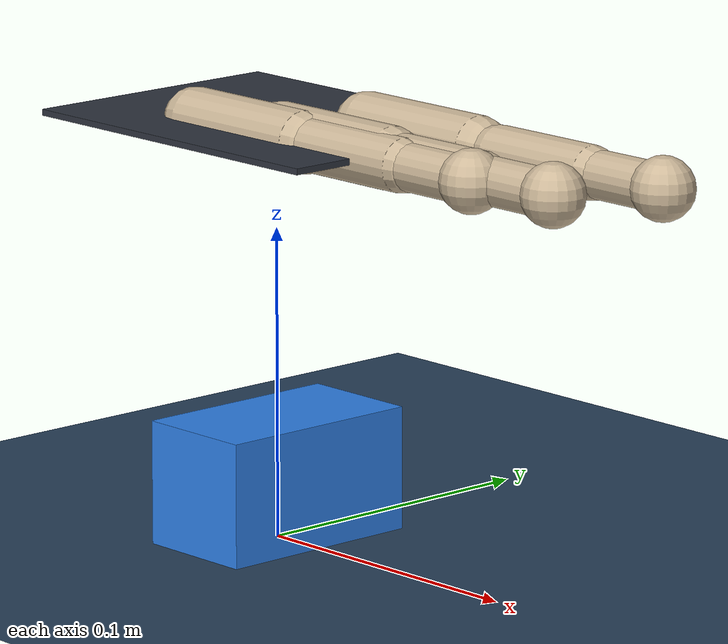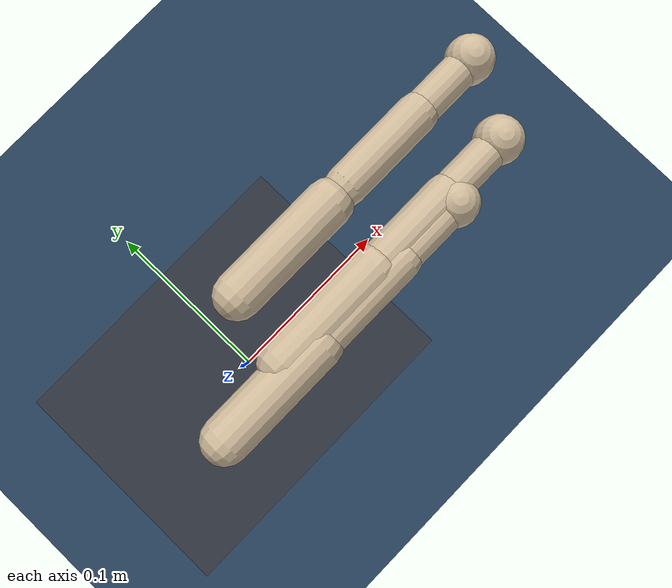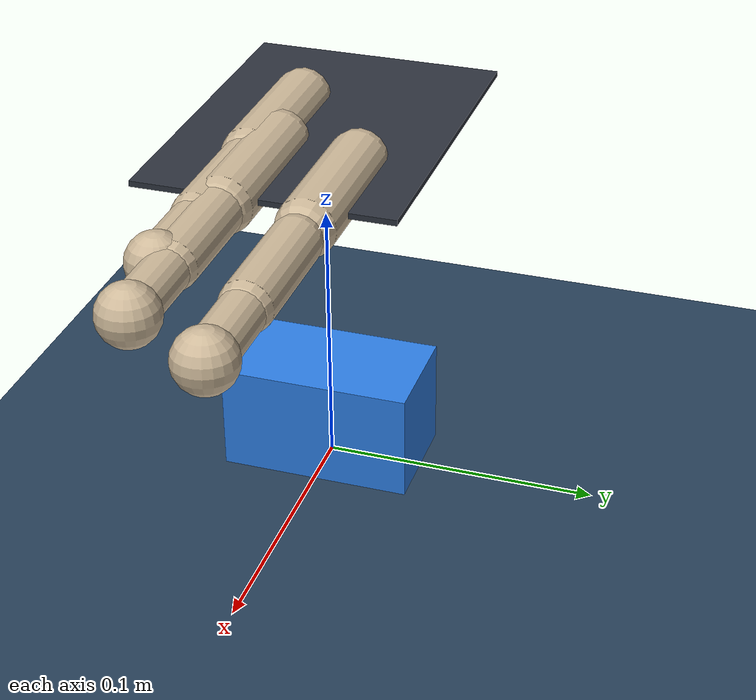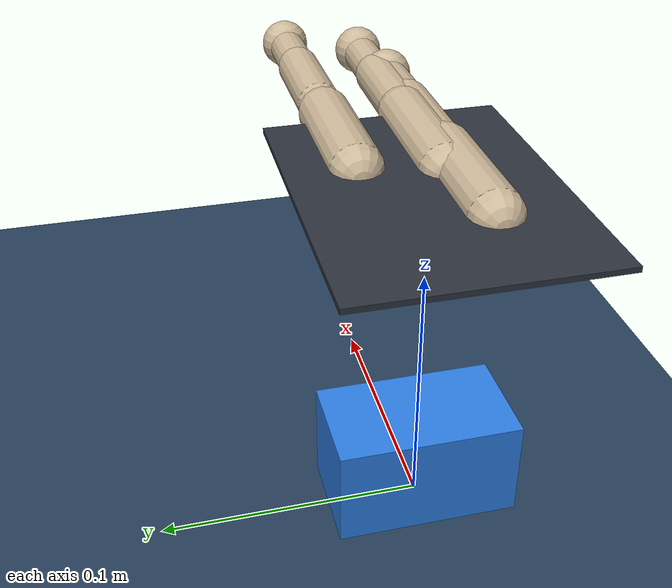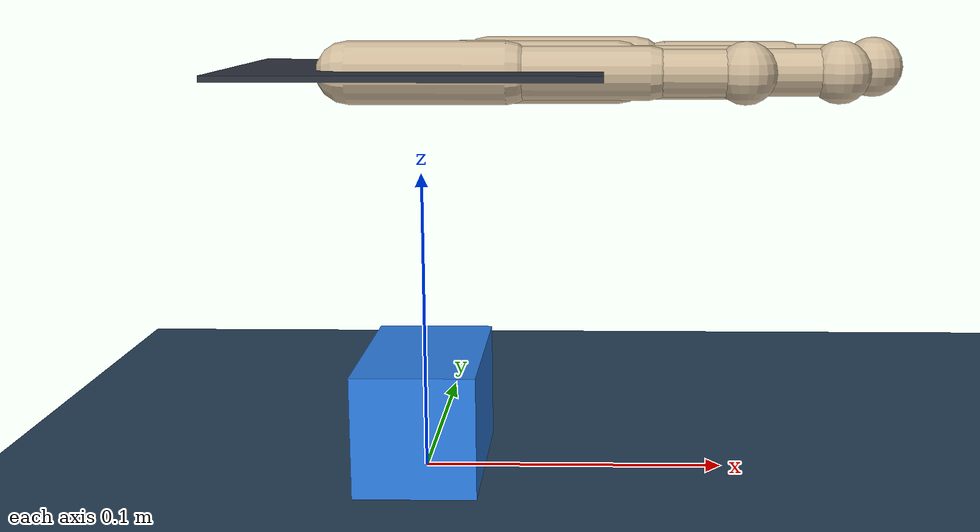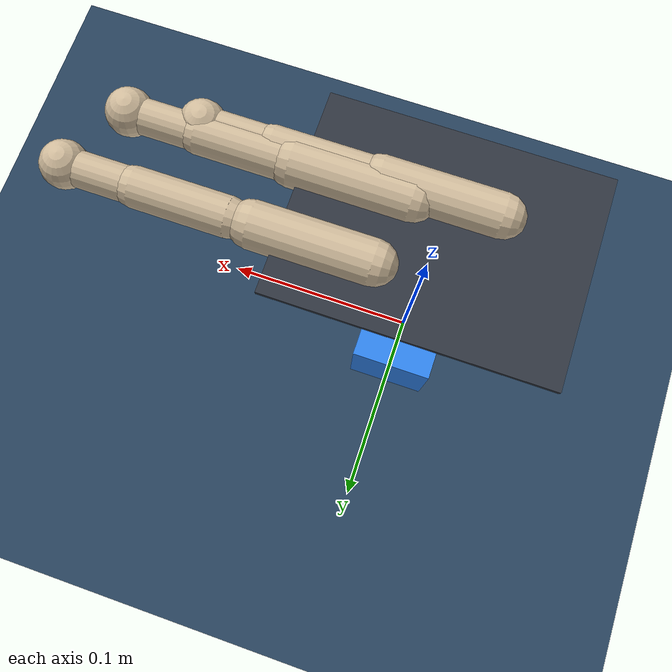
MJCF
<mujoco model="scene_prism3_tp0d0094p0d0127p0d0051_ip0d0209n0d0108p0d0092_mp0d0144p0d0193p0d0000">
  <compiler angle="radian" autolimits="true" />
  <option timestep="0.002" gravity="0 0 -9.81" integrator="implicitfast" />
  <visual>
    <headlight ambient=".4 .4 .4" diffuse=".8 .8 .8" specular="0.1 0.1 0.1" />
    <map znear=".01" />
    <quality shadowsize="2048" />
    <global elevation="-15" />
  </visual>
  <default>
    <geom friction="1.0 0.05 0.001" solref="0.01 1" solimp="0.95 0.99 0.001" />
    <motor ctrlrange="-1 1" ctrllimited="true" />
    <default class="pose">
      <joint damping="2.0" armature="0.01" />
      <position kp="4000" kv="100" forcerange="-1000 1000" />
    </default>
    <default class="ctrl">
      <joint damping="0.5" armature="0.001" />
      <position kp="30" kv="0.5" gear="1" forcerange="-10 10" ctrlrange="-1 1" />
    </default>
  </default>
  <asset>
    <texture type="skybox" builtin="gradient" rgb1="0.3 0.5 0.7" rgb2="0 0 0" width="512" height="3072" />
    <texture type="2d" name="groundplane" builtin="checker" mark="edge" rgb1="0.2 0.3 0.4" rgb2="0.1 0.2 0.3" markrgb="0.8 0.8 0.8" width="300" height="300" />
    <material name="groundplane" texture="groundplane" texuniform="true" texrepeat="5 5" reflectance="0.2" />
    <texture name="grid" type="2d" builtin="checker" rgb1="0.15 0.15 0.15" rgb2="0.25 0.25 0.25" width="256" height="256" />
    <material name="table_mat" texture="grid" texrepeat="3 3" reflectance="0.2" />
    <material name="palm_mat" rgba="0.18 0.2 0.24 1" />
    <material name="finger_mat" rgba="0.8 0.72 0.6 1" />
    <material name="object_mat" rgba="0.18 0.5 0.9 1" />
  </asset>
  <worldbody>
    <light pos="0 0 1.5" dir="0 0 -1" directional="true" diffuse=".6 .6 .6" specular=".2 .2 .2" />
    <light pos="0.5 0.5 1.0" dir="-1 -1 -1" directional="true" diffuse=".4 .4 .4" specular=".1 .1 .1" />
    <geom name="floor" type="plane" size="1.5 1.5 0.1" material="groundplane" />
    <body name="cube" pos="0.000000 0.000000 0.020000">
      <freejoint />
      <geom type="box" size="0.020000 0.035000 0.020000" density="500" material="object_mat" />
    </body>
    <body gravcomp="1" name="palm_pose" pos="0 0 0.134">
      <joint class="pose" name="palm_px" type="slide" axis="1 0 0" range="-0.20 0.20" />
      <joint class="pose" name="palm_py" type="slide" axis="0 1 0" range="-0.20 0.20" />
      <joint class="pose" name="palm_pz" type="slide" axis="0 0 1" range="-0.15 0.35" />
      <joint class="pose" name="palm_rx" type="hinge" axis="1 0 0" range="-1.57 1.57" />
      <joint class="pose" name="palm_ry" type="hinge" axis="0 1 0" range="-1.57 1.57" />
      <joint class="pose" name="palm_rz" type="hinge" axis="0 0 1" range="-3.14 3.14" />
      <geom type="box" size="0.06 0.045 0.001" material="palm_mat" />
      <body name="thumb_mount" pos="-0.020628 -0.015312 0">
        <inertial pos="0 0 0" mass="0.001" diaginertia="1e-6 1e-6 1e-6" />
        <body name="thumb_yaw_frame">
          <inertial pos="0 0 0" mass="0.001" diaginertia="1e-6 1e-6 1e-6" />
          <joint class="ctrl" name="thumb_yaw" type="hinge" axis="1 0 0" range="-1.1 1.1" />
          <body name="thumb_mcp_frame">
            <joint class="ctrl" name="thumb_mcp" type="hinge" axis="0 1 0" range="0 3.14" />
            <geom type="capsule" fromto="0 0 0 0.05 0 0" size="0.010" material="finger_mat" />
            <body name="thumb_len_frame" pos="0.055108 0 0">
              <geom type="capsule" fromto="0 0 0 0.04 0 0" size="0.0085" material="finger_mat" />
              <body name="thumb_pip_frame" pos="0.04 0 0">
                <joint class="ctrl" name="thumb_pip" type="hinge" axis="0 1 0" range="-1.2 0.5" />
                <geom type="capsule" fromto="0 0 0 0.03 0 0" size="0.0075" material="finger_mat" />
                <body name="thumb_tip" pos="0.03 0 0">
                  <geom type="sphere" size="0.010" material="finger_mat" />
                </body>
              </body>
            </body>
          </body>
        </body>
      </body>
      <body name="index_mount" pos="0.020884 0.019224 0">
        <inertial pos="0 0 0" mass="0.001" diaginertia="1e-6 1e-6 1e-6" />
        <body name="index_yaw_frame">
          <inertial pos="0 0 0" mass="0.001" diaginertia="1e-6 1e-6 1e-6" />
          <joint class="ctrl" name="index_yaw" type="hinge" axis="1 0 0" range="-1.1 1.1" />
          <body name="index_mcp_frame">
            <joint class="ctrl" name="index_mcp" type="hinge" axis="0 1 0" range="0 2.5" />
            <geom type="capsule" fromto="0 0 0 0.05 0 0" size="0.010" material="finger_mat" />
            <body name="index_len_frame" pos="0.059236 0 0">
              <geom type="capsule" fromto="0 0 0 0.04 0 0" size="0.0085" material="finger_mat" />
              <body name="index_pip_frame" pos="0.04 0 0">
                <joint class="ctrl" name="index_pip" type="hinge" axis="0 1 0" range="-1.2 1.57" />
                <geom type="capsule" fromto="0 0 0 0.03 0 0" size="0.0075" material="finger_mat" />
                <body name="index_tip" pos="0.03 0 0">
                  <geom type="sphere" size="0.010" material="finger_mat" />
                </body>
              </body>
            </body>
          </body>
        </body>
      </body>
      <body name="middle_mount" pos="0.01442 -0.010676 0">
        <inertial pos="0 0 0" mass="0.001" diaginertia="1e-6 1e-6 1e-6" />
        <body name="middle_yaw_frame">
          <inertial pos="0 0 0" mass="0.001" diaginertia="1e-6 1e-6 1e-6" />
          <joint class="ctrl" name="middle_yaw" type="hinge" axis="1 0 0" range="-1.1 1.1" />
          <body name="middle_mcp_frame">
            <joint class="ctrl" name="middle_mcp" type="hinge" axis="0 1 0" range="0 2.5" />
            <geom type="capsule" fromto="0 0 0 0.05 0 0" size="0.010" material="finger_mat" />
            <body name="middle_len_frame" pos="0.05 0 0">
              <geom type="capsule" fromto="0 0 0 0.04 0 0" size="0.0085" material="finger_mat" />
              <body name="middle_pip_frame" pos="0.04 0 0">
                <joint class="ctrl" name="middle_pip" type="hinge" axis="0 1 0" range="-1.2 1.57" />
                <geom type="capsule" fromto="0 0 0 0.03 0 0" size="0.0075" material="finger_mat" />
                <body name="middle_tip" pos="0.03 0 0">
                  <geom type="sphere" size="0.010" material="finger_mat" />
                </body>
              </body>
            </body>
          </body>
        </body>
      </body>
    </body>
  </worldbody>
  <actuator>
    <position class="pose" name="a_palm_px" joint="palm_px" ctrlrange="-0.20 0.20" />
    <position class="pose" name="a_palm_py" joint="palm_py" ctrlrange="-0.20 0.20" />
    <position class="pose" name="a_palm_pz" joint="palm_pz" ctrlrange="-0.15 0.35" />
    <position class="pose" name="a_palm_rx" joint="palm_rx" ctrlrange="-1.57 1.57" />
    <position class="pose" name="a_palm_ry" joint="palm_ry" ctrlrange="-1.57 1.57" />
    <position class="pose" name="a_palm_rz" joint="palm_rz" ctrlrange="-3.14 3.14" />
    <position class="ctrl" name="a_thumb_yaw" joint="thumb_yaw" ctrlrange="-1.1 1.1" />
    <position class="ctrl" name="a_thumb_mcp" joint="thumb_mcp" ctrlrange="0 3.14" />
    <position class="ctrl" name="a_thumb_pip" joint="thumb_pip" ctrlrange="-1.2 0.5" />
    <position class="ctrl" name="a_index_yaw" joint="index_yaw" ctrlrange="-1.1 1.1" />
    <position class="ctrl" name="a_index_mcp" joint="index_mcp" ctrlrange="0 2.5" />
    <position class="ctrl" name="a_index_pip" joint="index_pip" ctrlrange="-1.2 1.57" />
    <position class="ctrl" name="a_middle_yaw" joint="middle_yaw" ctrlrange="-1.1 1.1" />
    <position class="ctrl" name="a_middle_mcp" joint="middle_mcp" ctrlrange="0 2.5" />
    <position class="ctrl" name="a_middle_pip" joint="middle_pip" ctrlrange="-1.2 1.57" />
  </actuator>
  <keyframe>
    <key name="open" qpos="&#10;        0 0 0.02 1 0 0 0 0.02 0 0 0 0 0 0 2 -0.707 0 1.25 1 0 1.25 1&#10;      " ctrl="&#10;        0.02 0 0 0 0 0 0 2 -0.707 0 1.25 1 0 1.25 1&#10;      " />
    <key name="foundational" qpos="&#10;        0.01141706625 -0.01230289471 0.02814503277 0.7872442234 -0.01751066484 -0.09090140691 -0.6096530518 0.02000444012 -8.454193047e-07 -0.0004665894998 2.352957451e-06 -2.014772318e-06 6.553923374e-08 0.2549469762 1.887696447 -1.119509328 0.05774206037 1.398613917 1.087879737 -0.3353016647 1.660013474 1.142241063&#10;      " ctrl="&#10;        0.02 0 0 0 0 0 0.08598723047 1.832669654 -1.133897164 0.05738064988 1.400496103 1.088270084 -0.1654136965 1.739440077 1.161956443&#10;      " />
  </keyframe>
</mujoco>
